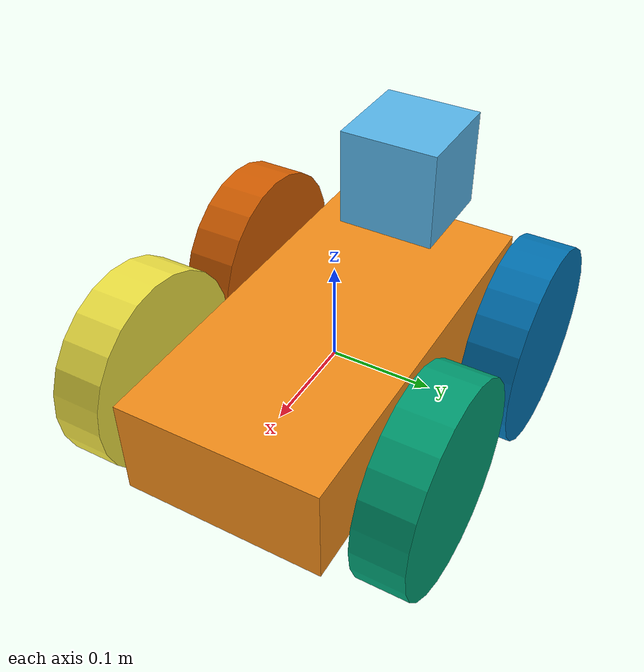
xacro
<?xml version='1.0'?>

<robot name="FOURWHEElBOT" xmlns:xacro="http://www.ros.org/wiki/xacro">

<xacro:include filename="$(find mybot_description)/urdf/mybot.gazebo" />

<!-- CHASSIS -->

  <link name="chassis">
    <pose>0 0 0.1 0 0 0</pose>
    <inertial>
      <mass value="10.0"/>
      <origin xyz="0.0 0 0.1" rpy=" 0 0 0"/>
      <inertia
          ixx="0.09" ixy="0" ixz="0"
          iyy="0.09" iyz="0"
          izz="0.09"
      />
    </inertial>

    <collision name='collision'>
      <geometry>
        <box size=".4 .2 .1"/>
      </geometry>
    </collision>

    <visual name='chassis_visual'>
      <origin xyz="0 0 0" rpy=" 0 0 0"/>
      <geometry>
        <box size=".4 .2 .1"/>
      </geometry>
    </visual>

  </link>

<!-- CAMERA -->

<link name="camera">
        <collision name="collision_camera">
                <origin xyz="0 0 0.028575" rpy="0 0 0" />
                <geometry>
                         <box size="0.1 0.1 0.1" />
                </geometry>
        </collision>

	<visual name="camera_visual">
                <origin xyz="0 0 0.028575" rpy="0 0 0" />
                <geometry>
                        <box size="0.1 0.1 0.1" />
                </geometry>
        </visual>

        <inertial>
                <mass value="0.1" />
                <origin xyz="0 0 0.0001" rpy="0 0 0"/>
                <inertia ixx="0.0001" ixy="0.0" ixz="0.0"
                         iyy="0.0001" iyz="0.0"
                         izz="0.0001" />
        </inertial>
</link>

<!-- WHEEL LINKS -->

  <link name="left_wheel">
    <!--origin xyz="0.1 0.13 0.1" rpy="0 1.5707 1.5707"-->
    <collision name="collision">
      <origin xyz="0 0 0" rpy="0 1.5707 1.5707"/>
      <geometry>
        <cylinder radius="0.1" length="0.05"/>
      </geometry>
    </collision>
    <visual name="left_wheel_visual">
      <origin xyz="0 0 0" rpy="0 1.5707 1.5707"/>
      <geometry>
        <cylinder radius="0.1" length="0.05"/>
      </geometry>
    </visual>
    <inertial>
      <origin xyz="0 0 0" rpy="0 1.5707 1.5707"/>
      <mass value="5"/>
      <cylinder_inertia m="5" r="0.1" h="0.05"/>
      <inertia
        ixx="0.013" ixy="0.0" ixz="0.0"
        iyy="0.013" iyz="0.0"
        izz="0.013"/>
    </inertial>
  </link>

  <link name="right_wheel">
    <!--origin xyz="0.1 -0.13 0.1" rpy="0 1.5707 1.5707"/-->
    <collision name="collision">
      <origin xyz="0 0 0" rpy="0 1.5707 1.5707"/>
      <geometry>
        <cylinder radius="0.1" length="0.05"/>
      </geometry>
    </collision>
    <visual name="right_wheel_visual">
      <origin xyz="0 0 0" rpy="0 1.5707 1.5707"/>
      <geometry>
        <cylinder radius="0.1" length="0.05"/>
      </geometry>
    </visual>
    <inertial>
      <origin xyz="0 0 0" rpy="0 1.5707 1.5707"/>
      <mass value="5"/>
      <cylinder_inertia m="5" r="0.1" h="0.05"/>
      <inertia
        ixx="0.013" ixy="0.0" ixz="0.0"
        iyy="0.013" iyz="0.0"
        izz="0.013"/>
    </inertial>
  </link>

  <link name="left_fwheel">
    <!--origin xyz="-0.1 0.13 0.1" rpy="0 1.5707 1.5707"-->
    <collision name="collision">
      <origin xyz="0 0 0" rpy="0 1.5707 1.5707"/>
      <geometry>
        <cylinder radius="0.1" length="0.05"/>
      </geometry>
    </collision>
    <visual name="left_wheel_fvisual">
      <origin xyz="0 0 0" rpy="0 1.5707 1.5707"/>
      <geometry>
        <cylinder radius="0.1" length="0.05"/>
      </geometry>
    </visual>
    <inertial>
      <origin xyz="0 0 0" rpy="0 1.5707 1.5707"/>
      <mass value="5"/>
      <cylinder_inertia m="5" r="0.1" h="0.05"/>
      <inertia
        ixx="0.013" ixy="0.0" ixz="0.0"
        iyy="0.013" iyz="0.0"
        izz="0.013"/>
    </inertial>
  </link>

  <link name="right_fwheel">
    <!--origin xyz="-0.1 -0.13 0.1" rpy="0 1.5707 1.5707"/-->
    <collision name="collision">
      <origin xyz="0 0 0" rpy="0 1.5707 1.5707"/>
      <geometry>
        <cylinder radius="0.1" length="0.05"/>
      </geometry>
    </collision>
    <visual name="right_wheel_fvisual">
      <origin xyz="0 0 0" rpy="0 1.5707 1.5707"/>
      <geometry>
        <cylinder radius="0.1" length="0.05"/>
      </geometry>
    </visual>
    <inertial>
      <origin xyz="0 0 0" rpy="0 1.5707 1.5707"/>
      <mass value="5"/>
      <cylinder_inertia m="5" r="0.1" h="0.05"/>
      <inertia
        ixx="0.013" ixy="0.0" ixz="0.0"
        iyy="0.013" iyz="0.0"
        izz="0.013"/>
    </inertial>
  </link>

<!-- WHEEL JOINTS -->

  <joint type="continuous" name="left_wheel_hinge">
    <origin xyz="0.1 0.15 0" rpy="0 0 0"/>
    <child link="left_wheel"/>
    <parent link="chassis"/>
    <axis xyz="0 1 0" rpy="0 0 0"/>
    <limit effort="100" velocity="100"/>
    <joint_properties damping="0.0" friction="1.0"/>
  </joint>

  <joint type="continuous" name="right_wheel_hinge">
    <origin xyz="0.1 -0.15 0" rpy="0 0 0"/>
    <child link="right_wheel"/>
    <parent link="chassis"/>
    <axis xyz="0 1 0" rpy="0 0 0"/>
    <limit effort="100" velocity="100"/>
    <joint_properties damping="0.0" friction="1.0"/>
  </joint>

 <joint type="continuous" name="left_wheel_fhinge">
    <origin xyz="-0.11 0.15 0" rpy="0 0 0"/>
    <child link="left_fwheel"/>
    <parent link="chassis"/>
    <axis xyz="0 1 0" rpy="0 0 0"/>
    <limit effort="100" velocity="100"/>
    <joint_properties damping="0.0" friction="1.0"/>
  </joint>

  <joint type="continuous" name="right_wheel_fhinge">
    <origin xyz="-0.1 -0.15 0" rpy="0 0 0"/>
    <child link="right_fwheel"/>
    <parent link="chassis"/>
    <axis xyz="0 1 0" rpy="0 0 0"/>
    <limit effort="100" velocity="100"/>
    <joint_properties damping="0.0" friction="1"/>
  </joint>

<joint name="kinect_joint" type="fixed">
        <origin xyz="-0.15 0 0.1" rpy="0 0 3.1414" />
        <child link="camera" />
        <parent link="chassis" />
</joint>

<!-- END -->

</robot>
